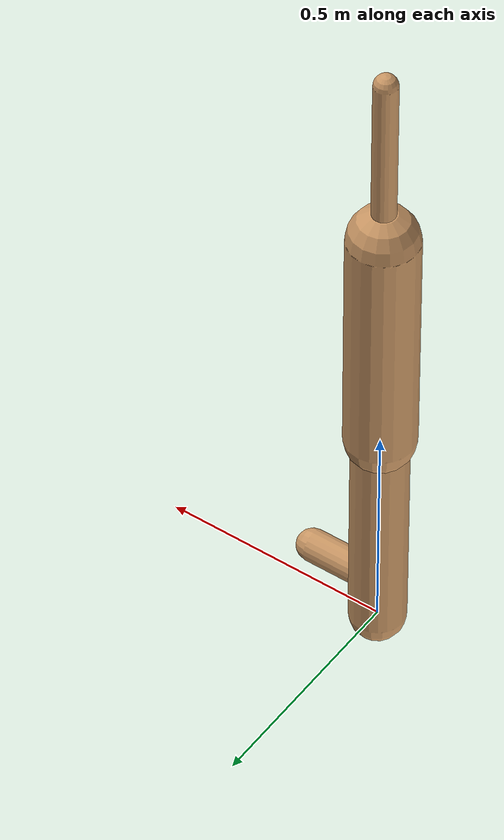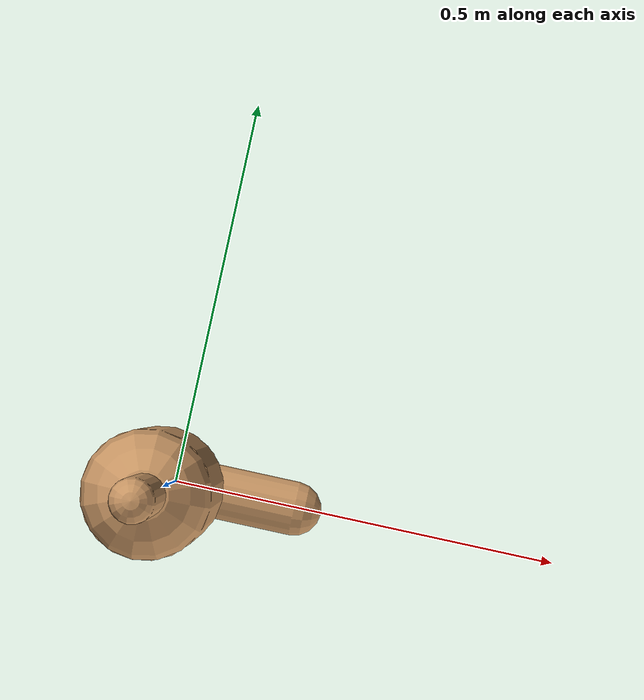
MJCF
<mujoco model="walker2d">
  <compiler angle="degree" coordinate="global" inertiafromgeom="true" />
  <default>
    <joint armature="0.01" damping=".1" limited="true" />
    <geom conaffinity="0" condim="3" contype="1" density="1000" friction="0.8 .1 .1" rgba="0.8 0.6 .4 1" />
  </default>
  <option integrator="RK4" timestep="0.002" />
  <worldbody>

    <body name="torso" pos="0 0 0.18710463983030562">
      <joint armature="0" axis="1 0 0" damping="0" limited="false" name="ignorex" pos="0 0 0" stiffness="0" type="slide" />
      <joint armature="0" axis="0 0 1" damping="0" limited="false" name="ignorez" pos="0 0 0" ref="1.25" stiffness="0" type="slide" />
      <joint armature="0" axis="0 1 0" damping="0" limited="false" name="ignorey" pos="0 0 0" stiffness="0" type="hinge" />
      <geom fromto="0 0 1.45 0 0 1.05" name="torso_geom" size="0.025138673002789477" type="capsule" />
      <body name="thigh">
        <joint axis="0 -1 0" name="thigh_joint" pos="0 0 1.05" range="-150 0" type="hinge" />
        <geom fromto="0.0 0.0 1.05 0.0 0.0 0.511371486396171" name="thigh_geom" size="0.0745084815550927" type="capsule" />
        <body name="leg" pos="0.0 0.0 -0.08862851360382895">
          <joint axis="0 -1 0" name="leg_joint" pos="0 0 0.6" range="-150 0" type="hinge" />
          <geom fromto="0.0 0.0 0.6 0.0 0.0 0.0015238737735233654" name="leg_geom" size="0.05960678524407415" type="capsule" />
          <body name="foot" pos="0.0 0.0 -0.09847612622647664">
            <joint axis="0 -1 0" name="foot_joint" pos="0 0 0.1" range="-45 45" type="hinge" />
            <geom fromto="0.0 0.0 0.1 0.15879921077063897 0.0 0.1" name="foot_geom" size="0.034624654294789114" type="capsule" />
          </body>
        </body>
      </body>

      <body name="thigh_left">
        <joint axis="0 -1 0" name="thigh_left_joint" pos="0 0 1.05" range="-150 0" type="hinge" />
        <geom fromto="0.0 0.0 1.05 0.0 0.0 0.511371486396171" name="thigh_left_geom" rgba=".7 .3 .6 1" size="0.0745084815550927" type="capsule" />
        <body name="leg_left" pos="0.0 0.0 -0.08862851360382895">
          <joint axis="0 -1 0" name="leg_left_joint" pos="0 0 0.6" range="-150 0" type="hinge" />
          <geom fromto="0.0 0.0 0.6 0.0 0.0 0.0015238737735233654" name="leg_left_geom" rgba=".7 .3 .6 1" size="0.05960678524407415" type="capsule" />
          <body name="foot_left" pos="0.0 0.0 -0.09847612622647664">
            <joint axis="0 -1 0" name="foot_left_joint" pos="0 0 0.1" range="-45 45" type="hinge" />
            <geom fromto="0.0 0.0 0.1 0.15879921077063897 0.0 0.1" name="foot_left_geom" rgba=".7 .3 .6 1" size="0.034624654294789114" type="capsule" />
          </body>
        </body>
      </body>
    </body>
  </worldbody>
  <actuator>

    <motor ctrllimited="true" ctrlrange="-1.0 1.0" gear="100" joint="thigh_joint" />
    <motor ctrllimited="true" ctrlrange="-1.0 1.0" gear="100" joint="leg_joint" />
    <motor ctrllimited="true" ctrlrange="-1.0 1.0" gear="100" joint="foot_joint" />
    <motor ctrllimited="true" ctrlrange="-1.0 1.0" gear="100" joint="thigh_left_joint" />
    <motor ctrllimited="true" ctrlrange="-1.0 1.0" gear="100" joint="leg_left_joint" />
    <motor ctrllimited="true" ctrlrange="-1.0 1.0" gear="100" joint="foot_left_joint" />

  </actuator>
</mujoco>
